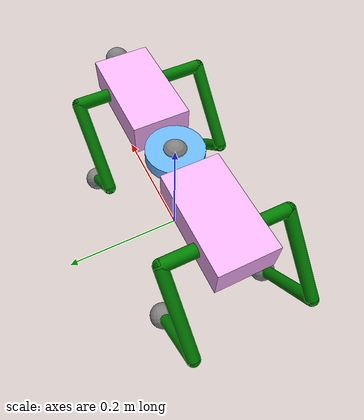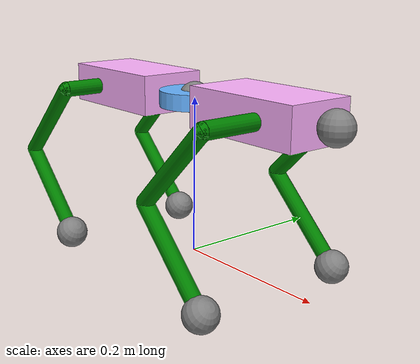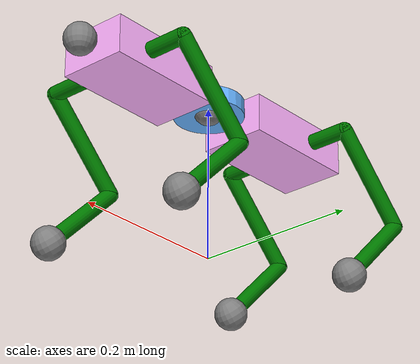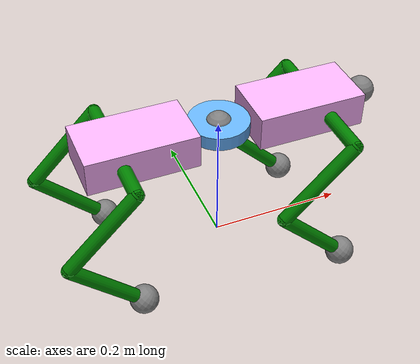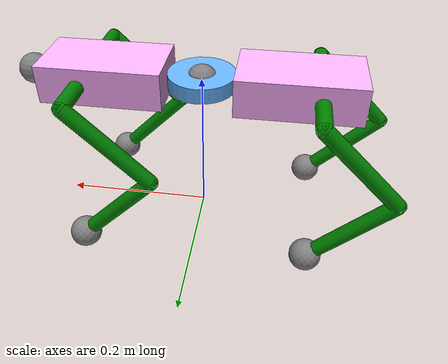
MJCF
<mujoco>

    <default>

        <default class="motor">

            <default class="limb-z-motor">
                <joint limited="true" range="-60 60" type="hinge"
                    pos="-0.12325 0 0" stiffness="0" damping="0.1" armature="0.0065"
                    group="1" />
            </default>

            <default class="limb-y-motor">
                <joint limited="true" range="-24 24" type="hinge"
                    pos="-0.12325 0 0" axis="0 1 0" stiffness="0" damping="0.1" armature="0.0065"
                    group="1" />
            </default>

            <default class="abduction_motor">
                <joint limited="true" range="-20 30" type="hinge"
                    pos="0 0 0" axis="1 0 0" stiffness="0" damping="0.1" armature="0.0065"
                    group="1" />
            </default>

            <default class="hip_motor">
                <joint limited="true" range="-40 40" type="hinge"
                    pos="0 0 0" axis="0 1 0" stiffness="0" damping="0.1" armature="0.0065"
                    group="1" />
            </default>

            <default class="knee_motor">
                <joint limited="true" range="-30 30" type="hinge"
                    pos="0 0 0" axis="0 1 0" stiffness="0" damping="0.1" armature="0.0065"
                    group="1" />
            </default>

            <default class="AbductionGeom">
                <geom type="capsule" mass="0.055" size="0.01" rgba="0.0 0.5 0.0 1"
                    group="1"/>
            </default>

            <default class="UpLeg">
                <geom type="capsule" mass="0.055" size="0.01" fromto="0 0 0 -0.14 0 0" rgba="0.0 0.5 0.0 1"
                    group="1" />
            </default>

            <default class="DownLeg">
                <geom type="capsule" mass="0.055" size="0.01" fromto="0 0 0 0.14 0 0" rgba="0.0 0.5 0.0 1"
                    group="1" />
            </default>

            <default class="Foot">
                <geom type="sphere" mass="0" size="0.02" rgba="1.0 1.0 0.1 1" friction="2 0.02 0.01"
                    group="1"/>
            </default>

        </default>

    </default>

    <worldbody>
        <body name="main_body" pos="0 0 0.2" euler="0 0 0" >
            <joint name="rail" type="free"/>

            <geom name="chest" group="1" mass="0.1" type="cylinder" size="0.044 0.01" rgba="0.4 0.7 1.0 1"/>

            <site name="imu" size="0.02" pos="0 0 0"/>

            <body name="frontlimb" pos="0.12325 0 0">
                <joint name="frontlimb-z-hinge" class="limb-z-motor" />
                <joint name="frontlimb-y-hinge" class="limb-y-motor" pos="-0.12325 0 0"/>

                <geom name="frontlimb_geom" group="1" mass="2.75" type="box" size="0.07925 0.044 0.025" rgba="1 0.7 1.0 1"/>

                <site name="head" pos="0.09925 0 0" size="0.02"/>

                <body name="FL" pos="0.02725 0.044 0">

                    <body name="LegFrame_FL">
                        <joint name="AbductionMotor_FL" class="abduction_motor"/>
                        <geom name="Abduction_FL" class="AbductionGeom" fromto="0 0 0 0 0.05 0"/>

                        <body name="UpLegFrame_FL" pos="0 0.05 0" euler="0 -45 0">
                            <joint name="HipMotor_FL" class="hip_motor" />
                            <geom name="UpLeg_FL" class="UpLeg"/>

                            <body name="DownLegFrame_FL" pos="-0.14 0 0" euler="0 90 0">
                                <joint name="KneeMotor_FL" class="knee_motor" />
                                <geom name="DownLeg_FL" class="DownLeg"/>

                                <body name="FootFrame_FL" pos="0.14 0 0">
                                    <geom name="Foot_FL" class="Foot"/>
                                    <site name="Foot_FL_contact" size="0.021"/>
                                </body>
                            </body>
                        </body>
                    </body>
                </body>

                <body name="FR" pos="0.02725 -0.044 0">
                    <body name="LegFrame_FR">
                        <joint name="AbductionMotor_FR" class="abduction_motor"/>
                        <geom name="Abduction_FR" class="AbductionGeom" fromto="0 0 0 0 -0.07 0"/>

                        <body name="UpLegFrame_FR" pos="0 -0.07 0" euler="0 -45 0">
                            <joint name="HipMotor_FR" class="hip_motor" />
                            <geom name="UpLeg_FR" class="UpLeg"/>

                            <body name="DownLegFrame_FR" pos="-0.14 0 0" euler="0 90 0">
                                <joint name="KneeMotor_FR" class="knee_motor"/>
                                <geom name="DownLeg_FR" class="DownLeg"/>

                                <body name="FootFrame_FR" pos="0.14 0 0">
                                    <geom name="Foot_FR" class="Foot"/>
                                    <site name="Foot_FR_contact" size="0.021"/>
                                </body>
                            </body>
                        </body>
                    </body>
                </body>

            </body>

            <body name="hindlimb" pos="-0.12325 0 0">
                <joint name="hindlimb-y-hinge" class="limb-y-motor" pos="0.12325 0 0"/>

                <geom name="hindlimb_geom" group="1" mass="2.75" type="box" size="0.07925 0.044 0.025" rgba="1 0.7 1.0 1"/>

                <body name="RL" pos="-0.02725 0.044 0">
                    <body name="LegFrame_RL">
                        <joint name="AbductionMotor_RL" class="abduction_motor"/>
                        <geom name="Abduction_RL" class="AbductionGeom" fromto="0 0 0 0 0.05 0"/>

                        <body name="UpLegFrame_RL" pos="0 0.05 0" euler="0 -45 0">
                            <joint name="HipMotor_RL" class="hip_motor" />
                            <geom name="UpLeg_RL" class="UpLeg"/>

                            <body name="DownLegFrame_RL" pos="-0.14 0 0" euler="0 90 0">
                                <joint name="KneeMotor_RL" class="knee_motor" />
                                <geom name="DownLeg_RL" class="DownLeg"/>

                                <body name="FootFrame_RL" pos="0.14 0 0">
                                    <geom name="Foot_RL" class="Foot"/>
                                    <site name="Foot_RL_contact" size="0.021"/>
                                </body>
                            </body>
                        </body>
                    </body>

                </body>

                <body name="RR" pos="-0.02725 -0.044 0">
                    <body name="LegFrame_RR">
                        <joint name="AbductionMotor_RR" class="abduction_motor"/>
                        <geom name="Abduction_RR" class="AbductionGeom" fromto="0 0 0 0 -0.05 0"/>

                        <body name="UpLegFrame_RR" pos="0 -0.05 0" euler="0 -45 0">
                            <joint name="HipMotor_RR" class="hip_motor" />
                            <geom name="UpLeg_RR" class="UpLeg"/>

                            <body name="DownLegFrame_RR" pos="-0.14 0 0" euler="0 90 0">
                                <joint name="KneeMotor_RR" class="knee_motor" />
                                <geom name="DownLeg_RR" class="DownLeg"/>

                                <body name="FootFrame_RR" pos="0.14 0 0">
                                    <geom name="Foot_RR" class="Foot"/>
                                    <site name="Foot_RR_contact" size="0.021"/>
                                </body>
                            </body>
                        </body>
                    </body>
                </body>

            </body>

        </body>

    </worldbody>

</mujoco>
